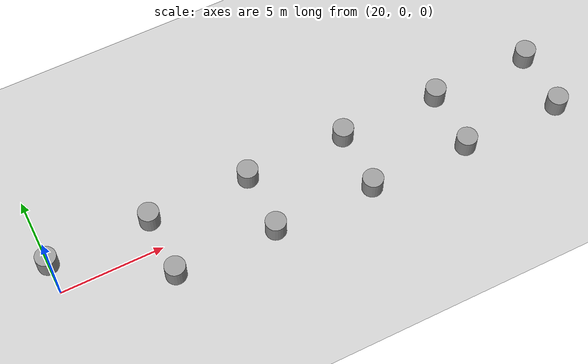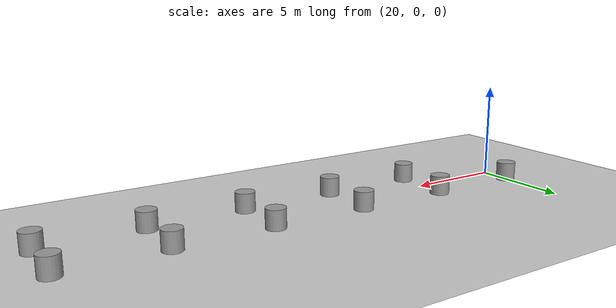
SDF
<sdf version="1.7">
 <world name="default">
  <model name="ground_plane">
   <static>1</static>
   <link name="link">
    <collision name="collision">
     <geometry><plane><normal>0 0 1</normal><size>100 100</size></plane></geometry>
     <surface>
      <contact><collide_bitmask>65535</collide_bitmask></contact>
      <friction><ode><mu>100</mu><mu2>50</mu2></ode></friction>
     </surface>
    </collision>
    <visual name="visual">
     <cast_shadows>0</cast_shadows>
     <geometry><plane><normal>0 0 1</normal><size>100 100</size></plane></geometry>
     <material>
      <script><uri>file://media/materials/scripts/gazebo.material</uri><name>Gazebo/Grey</name></script>
     </material>
    </visual>
   </link>
  </model>
  <model name="unit_cylinder_clone">
   <pose>25 -1.5 0.5 0 0 -0.00268</pose>
   <link name="link">
    <inertial>
     <mass>1</mass>
     <inertia><ixx>0.145833</ixx><ixy>0</ixy><ixz>0</ixz><iyy>0.145833</iyy><iyz>0</iyz><izz>0.125</izz></inertia>
    </inertial>
    <collision name="collision">
     <geometry><cylinder><radius>0.5</radius><length>1</length></cylinder></geometry>
    </collision>
    <visual name="visual">
     <geometry><cylinder><radius>0.5</radius><length>1</length></cylinder></geometry>
     <material>
      <script><name>Gazebo/Grey</name><uri>file://media/materials/scripts/gazebo.material</uri></script>
     </material>
    </visual>
   </link>
  </model>
  <model name="unit_cylinder_clone_1">
   <pose>30 -1.5 0.499994 -2e-06 -1e-06 0</pose>
   <link name="link">
    <inertial>
     <mass>1</mass>
     <inertia><ixx>0.145833</ixx><ixy>0</ixy><ixz>0</ixz><iyy>0.145833</iyy><iyz>0</iyz><izz>0.125</izz></inertia>
    </inertial>
    <collision name="collision">
     <geometry><cylinder><radius>0.5</radius><length>1</length></cylinder></geometry>
    </collision>
    <visual name="visual">
     <geometry><cylinder><radius>0.5</radius><length>1</length></cylinder></geometry>
     <material>
      <script><name>Gazebo/Grey</name><uri>file://media/materials/scripts/gazebo.material</uri></script>
     </material>
    </visual>
   </link>
  </model>
  <model name="unit_cylinder_clone_2">
   <pose>35 -1.5 0.499996 3e-06 1e-06 -0</pose>
   <link name="link">
    <inertial>
     <mass>1</mass>
     <inertia><ixx>0.145833</ixx><ixy>0</ixy><ixz>0</ixz><iyy>0.145833</iyy><iyz>0</iyz><izz>0.125</izz></inertia>
    </inertial>
    <collision name="collision">
     <geometry><cylinder><radius>0.5</radius><length>1</length></cylinder></geometry>
    </collision>
    <visual name="visual">
     <geometry><cylinder><radius>0.5</radius><length>1</length></cylinder></geometry>
     <material>
      <script><name>Gazebo/Grey</name><uri>file://media/materials/scripts/gazebo.material</uri></script>
     </material>
    </visual>
   </link>
  </model>
  <model name="unit_cylinder_clone_3">
   <pose>40 -1.5 0.49999 0 -0 0</pose>
   <link name="link">
    <inertial>
     <mass>1</mass>
     <inertia><ixx>0.145833</ixx><ixy>0</ixy><ixz>0</ixz><iyy>0.145833</iyy><iyz>0</iyz><izz>0.125</izz></inertia>
    </inertial>
    <collision name="collision">
     <geometry><cylinder><radius>0.5</radius><length>1</length></cylinder></geometry>
    </collision>
    <visual name="visual">
     <geometry><cylinder><radius>0.5</radius><length>1</length></cylinder></geometry>
     <material>
      <script><name>Gazebo/Grey</name><uri>file://media/materials/scripts/gazebo.material</uri></script>
     </material>
    </visual>
   </link>
  </model>
  <model name="unit_cylinder_clone_4">
   <pose>45 -1.5 0.499994 -3e-06 -0 -0</pose>
   <link name="link">
    <inertial>
     <mass>1</mass>
     <inertia><ixx>0.145833</ixx><ixy>0</ixy><ixz>0</ixz><iyy>0.145833</iyy><iyz>0</iyz><izz>0.125</izz></inertia>
    </inertial>
    <collision name="collision">
     <geometry><cylinder><radius>0.5</radius><length>1</length></cylinder></geometry>
    </collision>
    <visual name="visual">
     <geometry><cylinder><radius>0.5</radius><length>1</length></cylinder></geometry>
     <material>
      <script><name>Gazebo/Grey</name><uri>file://media/materials/scripts/gazebo.material</uri></script>
     </material>
    </visual>
   </link>
  </model>
  <model name="unit_cylinder_clone_20">
   <pose>20 1.5 0.499995 2e-06 -0 0</pose>
   <link name="link">
    <inertial>
     <mass>1</mass>
     <inertia><ixx>0.145833</ixx><ixy>0</ixy><ixz>0</ixz><iyy>0.145833</iyy><iyz>0</iyz><izz>0.125</izz></inertia>
    </inertial>
    <collision name="collision">
     <geometry><cylinder><radius>0.5</radius><length>1</length></cylinder></geometry>
    </collision>
    <visual name="visual">
     <geometry><cylinder><radius>0.5</radius><length>1</length></cylinder></geometry>
     <material>
      <script><name>Gazebo/Grey</name><uri>file://media/materials/scripts/gazebo.material</uri></script>
     </material>
    </visual>
   </link>
  </model>
  <model name="unit_cylinder_clone_21">
   <pose>25 1.5 0.499991 -0 -0 -0</pose>
   <link name="link">
    <inertial>
     <mass>1</mass>
     <inertia><ixx>0.145833</ixx><ixy>0</ixy><ixz>0</ixz><iyy>0.145833</iyy><iyz>0</iyz><izz>0.125</izz></inertia>
    </inertial>
    <collision name="collision">
     <geometry><cylinder><radius>0.5</radius><length>1</length></cylinder></geometry>
    </collision>
    <visual name="visual">
     <geometry><cylinder><radius>0.5</radius><length>1</length></cylinder></geometry>
     <material>
      <script><name>Gazebo/Grey</name><uri>file://media/materials/scripts/gazebo.material</uri></script>
     </material>
    </visual>
   </link>
  </model>
  <model name="unit_cylinder_clone_22">
   <pose>30 1.5 0.499999 0 0 -3e-05</pose>
   <link name="link">
    <inertial>
     <mass>1</mass>
     <inertia><ixx>0.145833</ixx><ixy>0</ixy><ixz>0</ixz><iyy>0.145833</iyy><iyz>0</iyz><izz>0.125</izz></inertia>
    </inertial>
    <collision name="collision">
     <geometry><cylinder><radius>0.5</radius><length>1</length></cylinder></geometry>
    </collision>
    <visual name="visual">
     <geometry><cylinder><radius>0.5</radius><length>1</length></cylinder></geometry>
     <material>
      <script><name>Gazebo/Grey</name><uri>file://media/materials/scripts/gazebo.material</uri></script>
     </material>
    </visual>
   </link>
  </model>
  <model name="unit_cylinder_clone_23">
   <pose>35 1.5 0.499995 2e-06 -0 0</pose>
   <link name="link">
    <inertial>
     <mass>1</mass>
     <inertia><ixx>0.145833</ixx><ixy>0</ixy><ixz>0</ixz><iyy>0.145833</iyy><iyz>0</iyz><izz>0.125</izz></inertia>
    </inertial>
    <collision name="collision">
     <geometry><cylinder><radius>0.5</radius><length>1</length></cylinder></geometry>
    </collision>
    <visual name="visual">
     <geometry><cylinder><radius>0.5</radius><length>1</length></cylinder></geometry>
     <material>
      <script><name>Gazebo/Grey</name><uri>file://media/materials/scripts/gazebo.material</uri></script>
     </material>
    </visual>
   </link>
  </model>
  <model name="unit_cylinder_clone_24">
   <pose>40 1.5 0.499991 -0 -0 -0</pose>
   <link name="link">
    <inertial>
     <mass>1</mass>
     <inertia><ixx>0.145833</ixx><ixy>0</ixy><ixz>0</ixz><iyy>0.145833</iyy><iyz>0</iyz><izz>0.125</izz></inertia>
    </inertial>
    <collision name="collision">
     <geometry><cylinder><radius>0.5</radius><length>1</length></cylinder></geometry>
    </collision>
    <visual name="visual">
     <geometry><cylinder><radius>0.5</radius><length>1</length></cylinder></geometry>
     <material>
      <script><name>Gazebo/Grey</name><uri>file://media/materials/scripts/gazebo.material</uri></script>
     </material>
    </visual>
   </link>
  </model>
  <model name="unit_cylinder_clone_25">
   <pose>45 1.5 0.5 0 -0 0</pose>
   <link name="link">
    <inertial>
     <mass>1</mass>
     <inertia><ixx>0.145833</ixx><ixy>0</ixy><ixz>0</ixz><iyy>0.145833</iyy><iyz>0</iyz><izz>0.125</izz></inertia>
    </inertial>
    <collision name="collision">
     <geometry><cylinder><radius>0.5</radius><length>1</length></cylinder></geometry>
    </collision>
    <visual name="visual">
     <geometry><cylinder><radius>0.5</radius><length>1</length></cylinder></geometry>
     <material>
      <script><name>Gazebo/Grey</name><uri>file://media/materials/scripts/gazebo.material</uri></script>
     </material>
    </visual>
   </link>
  </model>
 </world>
</sdf>
